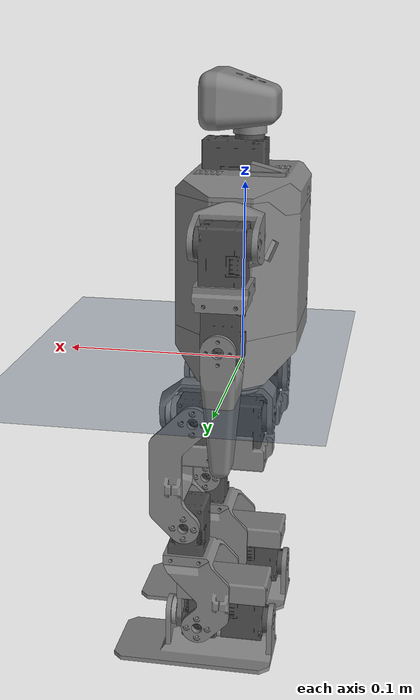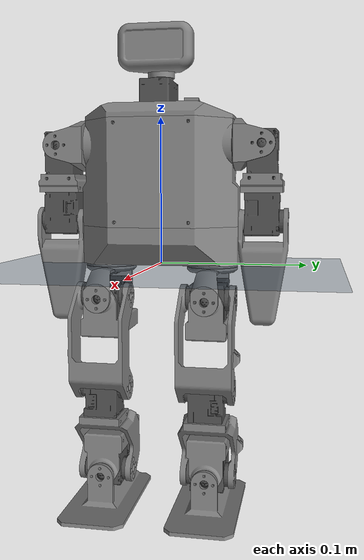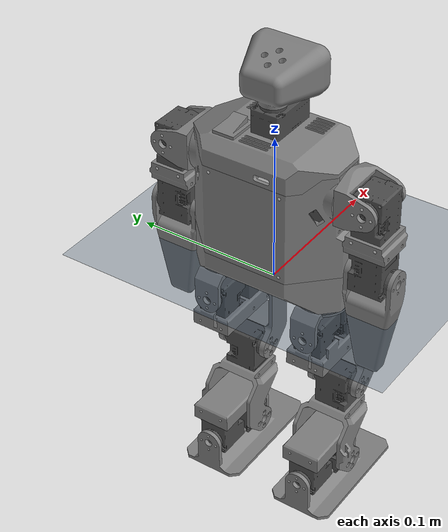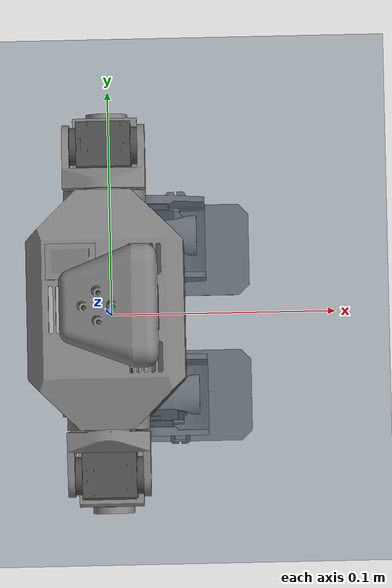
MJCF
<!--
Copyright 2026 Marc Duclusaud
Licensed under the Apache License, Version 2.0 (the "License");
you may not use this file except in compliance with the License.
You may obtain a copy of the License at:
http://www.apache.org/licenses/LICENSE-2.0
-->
<mujoco model="scene">
    <include file="robot.xml" />

    <visual>
        <headlight diffuse="0.6 0.6 0.6" ambient="0.3 0.3 0.3" specular="0 0 0" />
        <rgba haze="0.15 0.25 0.35 1" />
        <global azimuth="160" elevation="-20" />
    </visual>

    <asset>
        <texture type="skybox" builtin="gradient" rgb1="0.3 0.5 0.7" rgb2="0 0 0" width="512"
            height="3072" />
        <texture type="2d" name="groundplane" builtin="checker" mark="edge" rgb1="0.2 0.3 0.4"
            rgb2="0.1 0.2 0.3"
            markrgb="0.8 0.8 0.8" width="300" height="300" />
        <material name="groundplane" texture="groundplane" texuniform="true" texrepeat="5 5"
            reflectance="0.2" />
    </asset>

    <worldbody>
        <light pos="0 0 3.5" dir="0 0 -1" directional="true" />
        <geom name="floor" size="0 0 0.05" pos="0 0 0" type="plane" material="groundplane" />
    </worldbody>
</mujoco>

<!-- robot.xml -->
<!-- Generated using onshape-to-robot -->
<!-- Onshape https://cad.onshape.com/documents/d424992a192a8ce34ffce163/v/d1df625a85f2de984257464b/e/b34620a03cc3a684006c5867 -->
<mujoco model="microduck">
  <compiler angle="radian" meshdir="assets" autolimits="true"/>
  <default>
    <default class="microduck">
      <joint frictionloss="0.1" armature="0.005"/>
      <position kp="50" dampratio="1"/>
      <default class="visual">
        <geom type="mesh" contype="0" conaffinity="0" group="2"/>
      </default>
      <default class="collision">
        <geom group="3"/>
      </default>
    </default>
    <default class="xl330">
      <joint damping="0.041" frictionloss="0.013" armature="0.0018"/>
      <motor gear="1"/>
    </default>
  </default>
  <sensor>
    <framequat name="orientation" objtype="site" noise="0.001" objname="imu"/>
    <gyro name="angular-velocity" site="imu" noise="0.005"/>
    <gyro name="imu_ang_vel" site="imu"/>
    <velocimeter name="imu_lin_vel" site="imu"/>
    <accelerometer name="imu_accel" site="imu"/>
    <subtreeangmom name="root_angmom" body="trunk"/>
  </sensor>
  <worldbody>
    <!-- Link trunk -->
    <body name="trunk" pos="0 0 0" quat="1 0 0 0" childclass="microduck">
      <freejoint name="trunk_freejoint"/>
      <inertial pos="-0.00454781 -0.000104579 0.053896" mass="0.347283" fullinertia="0.000608722 0.000477224 0.000357224 -5.1387e-07 -1.16287e-05 1.9299e-06"/>
      <!-- Part stp39__configuration__2_2x8 -->
      <!-- Part stp39__configuration__2_2x8_2 -->
      <!-- Part arm_bearing_support__configuration_right -->
      <geom type="mesh" class="visual" pos="0.00575 -0.036 -0.0484" quat="0.707107 0 0 0.707107" mesh="arm_bearing_support__configuration_right" material="arm_bearing_support__configuration_right_material"/>
      <!-- Part xl330_without_horn -->
      <geom type="mesh" class="visual" pos="0 -0.044 0.081" quat="0.707107 0.707107 0 0" mesh="xl330_without_horn" material="xl330_without_horn_material"/>
      <!-- Part steel_shim -->
      <!-- Part pelvis__configuration_right -->
      <geom class="collision" pos="0 0 0.05375" quat="0.707107 0 0 0.707107" type="box" size="0.054 0.008 0.05375"/>
      <geom class="collision" pos="0 0 0.05775" quat="0.707107 0 0 0.707107" type="box" size="0.029 0.033 0.04275"/>
      <geom type="mesh" class="visual" pos="0.00575 -0.036 -0.0484" quat="0.707107 0 0 0.707107" mesh="pelvis__configuration_right" material="pelvis__configuration_right_material"/>
      <!-- Part stp39__configuration__2_2x8_3 -->
      <!-- Part arm_bearing_support__configuration_right_2 -->
      <geom type="mesh" class="visual" pos="-0.00575 0.036 -0.0484" quat="0.707107 -0 0 -0.707107" mesh="arm_bearing_support__configuration_right" material="arm_bearing_support__configuration_right_material"/>
      <!-- Part xl330_without_horn_2 -->
      <geom type="mesh" class="visual" pos="-0.00204165 -0 0.1195" quat="0.707107 0 0 0.707107" mesh="xl330_without_horn" material="xl330_without_horn_material"/>
      <!-- Part stp39__configuration__2_2x8_4 -->
      <!-- Part hat -->
      <!-- Part xl330_without_horn_3 -->
      <geom type="mesh" class="visual" pos="-0 0.036 0.0065" quat="0 0 -1 0" mesh="xl330_without_horn" material="xl330_without_horn_material"/>
      <!-- Part steel_shim_2 -->
      <!-- Part washer -->
      <!-- Part xl330_without_horn_4 -->
      <geom type="mesh" class="visual" pos="-0 0.044 0.081" quat="0 0 -0.707107 -0.707107" mesh="xl330_without_horn" material="xl330_without_horn_material"/>
      <!-- Part stp39__configuration__2_2x8_5 -->
      <!-- Part steel_shim_3 -->
      <!-- Part steel_shim_4 -->
      <!-- Part stp39__configuration__2_2x8_6 -->
      <!-- Part chest__configuration_right -->
      <geom type="mesh" class="visual" pos="0.00575 -0.036 -0.0484" quat="0.707107 0 0 0.707107" mesh="chest__configuration_right" material="chest__configuration_right_material"/>
      <!-- Part trunk_top__configuration_right -->
      <geom type="mesh" class="visual" pos="0.00575 -0.036 -0.0484" quat="0.707107 0 0 0.707107" mesh="trunk_top__configuration_right" material="trunk_top__configuration_right_material"/>
      <!-- Part stp39__configuration__2_2x8_7 -->
      <!-- Part washer_2 -->
      <!-- Part pom_shim -->
      <!-- Part pom_shim_2 -->
      <!-- Part stp39__configuration__2_2x8_8 -->
      <!-- Part stp39__configuration__2_2x8_9 -->
      <!-- Part stp39__configuration__2_2x8_10 -->
      <!-- Part stp39__configuration__2_2x8_11 -->
      <!-- Part steel_shim_5 -->
      <!-- Part steel_shim_6 -->
      <!-- Part battery -->
      <geom type="mesh" class="visual" pos="-0.01 -0 0.05115" quat="0.5 0.5 -0.5 -0.5" mesh="battery" material="battery_material"/>
      <!-- Part bms -->
      <!-- Part steel_shim_7 -->
      <!-- Part stp39__configuration__2_2x8_12 -->
      <!-- Part pom_shim_3 -->
      <!-- Part switch -->
      <geom type="mesh" class="visual" pos="-0.014 0.02 0.1075" quat="1 0 0 0" mesh="switch" material="switch_material"/>
      <!-- Part stp39__configuration__2_2x8_13 -->
      <!-- Part stp39__configuration__2_2x8_14 -->
      <!-- Part stp39__configuration__2_2x8_15 -->
      <!-- Part raspberry_pi_zero_2w -->
      <!-- Part washer_3 -->
      <!-- Part stp39__configuration__2_2x8_16 -->
      <!-- Part washer_4 -->
      <!-- Part steel_shim_8 -->
      <!-- Part stp39__configuration__2_2x8_17 -->
      <!-- Part xl330_without_horn_5 -->
      <geom type="mesh" class="visual" pos="0 -0.036 0.0065" quat="0 1 0 -0" mesh="xl330_without_horn" material="xl330_without_horn_material"/>
      <!-- Part pom_shim_4 -->
      <!-- Part stp39__configuration__2_2x8_18 -->
      <!-- Part charger -->
      <!-- Frame body -->
      <site group="3" name="body" pos="0 0 0" quat="1 -0 -0 -0"/>
      <!-- Frame imu -->
      <site group="3" name="imu" pos="0.01483 -0.002 0.0675" quat="0.5 -0.5 -0.5 0.5"/>
      <!-- Link head -->
      <body name="head" pos="-0.00204165 -0 0.126" quat="0.707107 0 0 0.707107">
        <!-- Joint from trunk to head -->
        <joint axis="0 0 1" name="head" type="hinge" range="-1.5707963267949783 1.5707963267948148" class="xl330"/>
        <inertial pos="5.1303e-08 -0.0074561 0.0161837" mass="0.0166215" fullinertia="2.92963e-06 3.58354e-06 4.24694e-06 -1.6e-11 4e-12 2.61187e-07"/>
        <!-- Part stp39__configuration__2x6 -->
        <!-- Part stp39__configuration__2x6_2 -->
        <!-- Part head__configuration_right -->
        <geom type="mesh" class="visual" pos="-0.036 -0.00779165 -0.1744" quat="1 -0 -0 0" mesh="head__configuration_right" material="head__configuration_right_material"/>
        <!-- Part stp39__configuration__2x6_3 -->
        <!-- Part stp39__configuration__2x6_4 -->
      </body>
      <!-- Link shoulder -->
      <body name="shoulder" pos="0 -0.0505 0.081" quat="0.707107 -0.707107 -0 0">
        <!-- Joint from trunk to shoulder -->
        <joint axis="0 0 1" name="right_shoulder_pitch" type="hinge" range="-3.141592653589793 3.141592653589793" class="xl330"/>
        <inertial pos="4.19e-10 2.814e-09 -0.00850029" mass="0.00898451" fullinertia="1.06003e-06 1.78233e-06 1.86739e-06 0 0 -0"/>
        <!-- Part stp39__configuration__2x6_5 -->
        <!-- Part stp39__configuration__2x6_6 -->
        <!-- Part stp39__configuration__2x6_7 -->
        <!-- Part stp39__configuration__2x6_8 -->
        <!-- Part stp39__configuration__2x6_9 -->
        <!-- Part stp39__configuration__2x6_10 -->
        <!-- Part stp39__configuration__2x6_11 -->
        <!-- Part stp39__configuration__2x6_12 -->
        <!-- Part stp39__configuration__2x6_13 -->
        <!-- Part shoulder -->
        <geom type="mesh" class="visual" pos="-0 -0.0245 0.0132" quat="0.5 -0.5 -0.5 -0.5" mesh="shoulder" material="shoulder_material"/>
        <!-- Part stp39__configuration__2x6_14 -->
        <!-- Part stp39__configuration__2x6_15 -->
        <!-- Part stp39__configuration__2x6_16 -->
        <!-- Link humerus__configuration_right -->
        <body name="humerus__configuration_right" pos="0.0145 0 -0.0195" quat="0 0.707107 0 0.707107">
          <!-- Joint from shoulder to humerus__configuration_right -->
          <joint axis="0 0 1" name="right_shoulder_roll" type="hinge" range="-3.1415926535897922 8.881784197001252e-16" class="xl330"/>
          <inertial pos="-0.000309872 -0.0252784 -0.0143918" mass="0.0416867" fullinertia="1.76899e-05 3.95132e-06 1.75854e-05 -3.03216e-07 -2.278e-09 -7.8184e-08"/>
          <!-- Part stp39__configuration__2_2x8_19 -->
          <!-- Part stp39__configuration__2_2x8_20 -->
          <!-- Part stp39__configuration__2_2x8_21 -->
          <!-- Part stp39__configuration__2_2x8_22 -->
          <!-- Part xl330 -->
          <geom type="mesh" class="visual" pos="0 0 -0.0065" quat="1 -0 -0 0" mesh="xl330" material="xl330_material"/>
          <!-- Part stp39__configuration__2_2x8_23 -->
          <!-- Part stp39__configuration__2_2x8_24 -->
          <!-- Part xl330_without_horn_6 -->
          <geom type="mesh" class="visual" pos="-0.008 -0.0515 -0.0145" quat="0 0.707107 0 -0.707107" mesh="xl330_without_horn" material="xl330_without_horn_material"/>
          <!-- Part stp39__configuration__2_2x8_25 -->
          <!-- Part stp39__configuration__2_2x8_26 -->
          <!-- Part humerus -->
          <geom type="mesh" class="visual" pos="-0.0327 -0.0245 -0.0145" quat="0 0 0.707107 0.707107" mesh="humerus" material="humerus_material"/>
          <!-- Link radius -->
          <body name="radius" pos="-0.0145 -0.0515 -0.0145" quat="0.707107 0 0.707107 -0">
            <!-- Joint from humerus__configuration_right to radius -->
            <joint axis="0 0 1" name="right_elbow" type="hinge" range="-2.181661564992912 2.181661564992912" class="xl330"/>
            <inertial pos="-4.0628e-08 -0.0310611 0.0130165" mass="0.0115415" fullinertia="5.26775e-06 1.21602e-06 4.45903e-06 -4e-12 -1.2e-11 1.7157e-07"/>
            <!-- Part stp39__configuration__2x6_17 -->
            <!-- Part stp39__configuration__2x6_18 -->
            <!-- Part radius -->
            <geom class="collision" pos="-0 0 0.0135" quat="0.707107 -0 -0 -0.707107" type="cylinder" size="0.009 0.01675"/>
            <geom class="collision" pos="-0 -0.067014 0.0135" quat="0.707107 -0 -0 -0.707107" type="cylinder" size="0.00525 0.008"/>
            <geom type="mesh" class="visual" pos="0 0.027 0.0472" quat="0.5 -0.5 -0.5 -0.5" mesh="radius" material="radius_material"/>
            <!-- Part stp39__configuration__2x6_19 -->
            <!-- Part dc15_a01_idle_cap_dummy -->
            <geom type="mesh" class="visual" pos="0 0 0.0065" quat="0 0.707107 0.707107 -0" mesh="dc15_a01_idle_cap_dummy" material="dc15_a01_idle_cap_dummy_material"/>
            <!-- Part bts2_m2_6x8 -->
            <geom type="mesh" class="visual" pos="0 0 0.0065" quat="0 0.707107 0.707107 -0" mesh="bts2_m2_6x8" material="bts2_m2_6x8_material"/>
            <!-- Part stp39__configuration__2x6_20 -->
          </body>
        </body>
      </body>
      <!-- Link hip -->
      <body name="hip" pos="0 -0.036 0" quat="1 -0 -0 0">
        <!-- Joint from trunk to hip -->
        <joint axis="0 0 1" name="right_hip_yaw" type="hinge" range="-4.188790204786353 1.047197551196635" class="xl330"/>
        <inertial pos="0.00421822 1.46909e-07 -0.00948697" mass="0.00884451" fullinertia="9.36719e-07 4.32505e-06 4.03697e-06 -3.3e-11 1.95496e-07 0"/>
        <!-- Part hip__configuration_right -->
        <geom type="mesh" class="visual" pos="0.00575 -0 -0.0484" quat="0.707107 0 0 0.707107" mesh="hip__configuration_right" material="hip__configuration_right_material"/>
        <!-- Part stp39__configuration__2x6_21 -->
        <!-- Part stp39__configuration__2x6_22 -->
        <!-- Part stp39__configuration__2x6_23 -->
        <!-- Part stp39__configuration__2x6_24 -->
        <!-- Part stp39__configuration__2x6_25 -->
        <!-- Part stp39__configuration__2x6_26 -->
        <!-- Part stp39__configuration__2x6_27 -->
        <!-- Part stp39__configuration__2x6_28 -->
        <!-- Part stp39__configuration__2x6_29 -->
        <!-- Part stp39__configuration__2x6_30 -->
        <!-- Part stp39__configuration__2x6_31 -->
        <!-- Part stp39__configuration__2x6_32 -->
        <!-- Link hip_block__configuration_right -->
        <body name="hip_block__configuration_right" pos="-0.02 0 -0.0214" quat="0.5 -0.5 0.5 -0.5">
          <!-- Joint from hip to hip_block__configuration_right -->
          <joint axis="0 0 1" name="right_hip_roll" type="hinge" range="-0.610865238197994 0.6108652381980366" class="xl330"/>
          <inertial pos="-5.75932e-05 0.00982795 0.0271518" mass="0.04763" fullinertia="1.64064e-05 1.33088e-05 7.85889e-06 -9.153e-09 7.8745e-08 6.63067e-07"/>
          <!-- Part stp39__configuration__2_2x8_27 -->
          <!-- Part xl330_2 -->
          <geom type="mesh" class="visual" pos="-0.008 -0 0.0385" quat="0 0.707107 0 -0.707107" mesh="xl330" material="xl330_material"/>
          <!-- Part dc15_a01_horn_idle2_dummy -->
          <geom type="mesh" class="visual" pos="0 -0 0.033" quat="0 -0 1 0" mesh="dc15_a01_horn_idle2_dummy" material="dc15_a01_horn_idle2_dummy_material"/>
          <!-- Part stp39__configuration__2_2x8_28 -->
          <!-- Part stp39__configuration__2_2x8_29 -->
          <!-- Part stp39__configuration__2_2x8_30 -->
          <!-- Part hip_dbl_block__configuration_right -->
          <geom class="collision" pos="-0 0.02075 0.02575" quat="0 -0 0.707107 -0.707107" type="box" size="0.0135 0.02525 0.00625"/>
          <geom type="mesh" class="visual" pos="0 0.027 0.02575" quat="0 -0 0.707107 -0.707107" mesh="hip_dbl_block__configuration_right" material="hip_dbl_block__configuration_right_material"/>
          <!-- Part stp39__configuration__2_2x8_31 -->
          <!-- Part xl330_without_horn_7 -->
          <geom type="mesh" class="visual" pos="-0 0 0.0065" quat="0 1 0 0" mesh="xl330_without_horn" material="xl330_without_horn_material"/>
          <!-- Part bts2_m2_6x8_2 -->
          <geom type="mesh" class="visual" pos="0 -0 0.033" quat="0 -0 1 0" mesh="bts2_m2_6x8" material="bts2_m2_6x8_material"/>
          <!-- Part dc15_a01_idle_cap_dummy_2 -->
          <geom type="mesh" class="visual" pos="0 -0 0.033" quat="0 -0 1 0" mesh="dc15_a01_idle_cap_dummy" material="dc15_a01_idle_cap_dummy_material"/>
          <!-- Part stp39__configuration__2_2x8_32 -->
          <!-- Part spacer__configuration_right -->
          <geom type="mesh" class="visual" pos="-0 -0.0095 0.0385" quat="0 0 -0.707107 -0.707107" mesh="spacer__configuration_right" material="spacer__configuration_right_material"/>
          <!-- Link femur__configuration_right -->
          <body name="femur__configuration_right" pos="-0.0145 -0 0.0385" quat="0 0.707107 0 -0.707107">
            <!-- Joint from hip_block__configuration_right to femur__configuration_right -->
            <joint axis="0 0 1" name="right_hip_pitch" type="hinge" range="-1.5707963267948974 1.5707963267948957" class="xl330"/>
            <inertial pos="-0.0109472 -0.0366847 -0.0147025" mass="0.014726" fullinertia="1.12665e-05 4.38335e-06 8.95932e-06 -1.12592e-06 1.333e-09 -4.521e-09"/>
            <!-- Part stp39__configuration__2x6_33 -->
            <!-- Part femur__configuration_right -->
            <geom class="collision" pos="-0.015 -0.0335001 0.00275" quat="0.5 -0.5 0.5 0.5" type="box" size="0.00125 0.009 0.022228"/>
            <geom class="collision" pos="-0.008818 -0.00881806 0.00275" quat="0.653281 -0.270598 0.653281 0.270598" type="box" size="0.00125 0.009 0.0124705"/>
            <geom class="collision" pos="-0.011318 -0.0556821 0.00275" quat="0.270598 -0.653281 0.270598 0.653281" type="box" size="0.00125 0.009 0.008935"/>
            <geom type="mesh" class="visual" pos="0.003 -0.132713 -0.0145" quat="0.5 -0.5 0.5 0.5" mesh="femur__configuration_right" material="femur__configuration_right_material"/>
            <!-- Part stp39__configuration__2x6_34 -->
            <!-- Part stp39__configuration__2x6_35 -->
            <!-- Part stp39__configuration__2x6_36 -->
            <!-- Part stp39__configuration__2x6_37 -->
            <!-- Part stp39__configuration__2x6_38 -->
            <!-- Part stp39__configuration__2x6_39 -->
            <!-- Part stp39__configuration__2x6_40 -->
            <!-- Part stp39__configuration__2x6_41 -->
            <!-- Part stp39__configuration__2x6_42 -->
            <!-- Part stp39__configuration__2x6_43 -->
            <!-- Part stp39__configuration__2x6_44 -->
            <!-- Part stp39__configuration__2x6_45 -->
            <!-- Part stp39__configuration__2x6_46 -->
            <!-- Part stp39__configuration__2x6_47 -->
            <!-- Part stp39__configuration__2x6_48 -->
            <!-- Link tibia__configuration_right -->
            <body name="tibia__configuration_right" pos="-0.005 -0.062 -0" quat="1 -0 0 -0">
              <!-- Joint from femur__configuration_right to tibia__configuration_right -->
              <joint axis="0 0 1" name="right_knee" type="hinge" range="-0.7853981633977201 2.356194490192073" class="xl330"/>
              <inertial pos="0.00276278 -0.0196679 -0.0144621" mass="0.0300463" fullinertia="1.53882e-05 5.3311e-06 1.38581e-05 2.25674e-06 7.6682e-08 -1.37001e-07"/>
              <!-- Part stp39__configuration__2x6_49 -->
              <!-- Part stp39__configuration__2x6_50 -->
              <!-- Part stp39__configuration__2x6_51 -->
              <!-- Part stp39__configuration__2x6_52 -->
              <!-- Part stp39__configuration__2_2x8_33 -->
              <!-- Part xl330_3 -->
              <geom type="mesh" class="visual" pos="0 -0 -0.0065" quat="1 -0 -0 0" mesh="xl330" material="xl330_material"/>
              <!-- Part tibia__configuration_right -->
              <geom class="collision" pos="0.017 -0.0444631 0.00275" quat="0.5 -0.5 0.5 0.5" type="box" size="0.00125 0.009 0.0115"/>
              <geom class="collision" pos="0.0138 -0.0554431 0.00275" quat="0.653281 -0.270598 0.653281 0.270598" type="box" size="0.00125 0.009 0.00825"/>
              <geom class="collision" pos="0.00675 -0.0287131 0.00275" quat="0.270598 -0.653281 0.270598 0.653281" type="box" size="0.00125 0.0106065 0.016617"/>
              <geom class="collision" pos="0.0117 -0.0236231 -0.0145" quat="0.270598 -0.653281 0.270598 0.653281" type="box" size="0.0185 0.0035 0.0023295"/>
              <geom type="mesh" class="visual" pos="0.008 -0.0707131 -0.0145" quat="0.5 -0.5 0.5 0.5" mesh="tibia__configuration_right" material="tibia__configuration_right_material"/>
              <!-- Part stp39__configuration__2x6_53 -->
              <!-- Part stp39__configuration__2_2x8_34 -->
              <!-- Part stp39__configuration__2x6_54 -->
              <!-- Part stp39__configuration__2_2x8_35 -->
              <!-- Part stp39__configuration__2_2x8_36 -->
              <!-- Part stp39__configuration__2x6_55 -->
              <!-- Part stp39__configuration__2x6_56 -->
              <!-- Link ankle_block__configuration_left -->
              <body name="ankle_block__configuration_left" pos="0.008 -0.0612131 -0" quat="0 -0 -0 1">
                <!-- Joint from tibia__configuration_right to ankle_block__configuration_left -->
                <joint axis="0 0 1" name="right_ankle_pitch" type="hinge" range="-1.5707963267948077 0.6108652381981041" class="xl330"/>
                <inertial pos="-0.0110676 -0.00979852 -0.0144015" mass="0.04722" fullinertia="7.83993e-06 1.29837e-05 1.60971e-05 -6.00742e-07 -4.9782e-08 -6.127e-09"/>
                <!-- Part stp39__configuration__2_2x8_37 -->
                <!-- Part xl330_4 -->
                <geom type="mesh" class="visual" pos="0 0 -0.0065" quat="1 0 -0 0" mesh="xl330" material="xl330_material"/>
                <!-- Part dc15_a01_horn_idle2_dummy_2 -->
                <geom type="mesh" class="visual" pos="-0.0055 0 -0.0145" quat="0 -0.707107 -0 0.707107" mesh="dc15_a01_horn_idle2_dummy" material="dc15_a01_horn_idle2_dummy_material"/>
                <!-- Part stp39__configuration__2_2x8_38 -->
                <!-- Part stp39__configuration__2_2x8_39 -->
                <!-- Part stp39__configuration__2_2x8_40 -->
                <!-- Part ankle_dbl_block__configuration_right -->
                <geom class="collision" pos="-0.01275 -0.02075 -0.0145" quat="0.5 0.5 0.5 -0.5" type="box" size="0.0135 0.02525 0.00625"/>
                <geom type="mesh" class="visual" pos="0 0.0095 -0.0145" quat="0.5 0.5 0.5 -0.5" mesh="ankle_dbl_block__configuration_right" material="ankle_dbl_block__configuration_right_material"/>
                <!-- Part stp39__configuration__2_2x8_41 -->
                <!-- Part xl330_without_horn_8 -->
                <geom type="mesh" class="visual" pos="-0.032 0 -0.0145" quat="0.707107 0 -0.707107 -0" mesh="xl330_without_horn" material="xl330_without_horn_material"/>
                <!-- Part bts2_m2_6x8_3 -->
                <geom type="mesh" class="visual" pos="-0.0055 0 -0.0145" quat="0 -0.707107 -0 0.707107" mesh="bts2_m2_6x8" material="bts2_m2_6x8_material"/>
                <!-- Part dc15_a01_idle_cap_dummy_3 -->
                <geom type="mesh" class="visual" pos="-0.0055 0 -0.0145" quat="0 -0.707107 -0 0.707107" mesh="dc15_a01_idle_cap_dummy" material="dc15_a01_idle_cap_dummy_material"/>
                <!-- Part stp39__configuration__2_2x8_42 -->
                <!-- Part spacer__configuration_right_2 -->
                <geom type="mesh" class="visual" pos="0 0.0095 -0.0145" quat="0.5 0.5 0.5 -0.5" mesh="spacer__configuration_right" material="spacer__configuration_right_material"/>
                <!-- Link foot -->
                <body name="foot" pos="-0.0385 0 -0.0145" quat="0 -0.707107 0 -0.707107">
                  <!-- Joint from ankle_block__configuration_left to foot -->
                  <joint axis="0 0 1" name="right_ankle_roll" type="hinge" range="-0.610865238197748 0.6108652381982826" class="xl330"/>
                  <inertial pos="-0 -0.0168869 0.0347422" mass="0.016823" fullinertia="1.15605e-05 1.2167e-05 2.53496e-06 0 -0 5.67932e-07"/>
                  <!-- Part stp39__configuration__2x6_57 -->
                  <!-- Part stp39__configuration__2x6_58 -->
                  <!-- Part stp39__configuration__2x6_59 -->
                  <!-- Part stp39__configuration__2x6_60 -->
                  <!-- Part stp39__configuration__2x6_61 -->
                  <!-- Part foot__configuration_right -->
                  <geom name="right_foot_collision_1" class="collision" pos="-0 -0.02175 0.042" quat="0 0 0.707107 0.707107" type="box" size="0.0225 0.04 0.00125"/>
                  <geom name="right_foot_collision_2" class="collision" pos="-0 -0.02175 0.042" quat="0 0 0.707107 0.707107" type="box" size="0.0175 0.045 0.00125"/>
                  <geom name="right_foot_collision_3" class="collision" pos="-0.0175 -0.02175 0.002" quat="0.270598 -0.270598 -0.653281 -0.653281" type="box" size="0.00353553 0.00353553 0.00125"/>
                  <geom name="right_foot_collision_4" class="collision" pos="0.0175 -0.02175 0.002" quat="0.270598 -0.270598 -0.653281 -0.653281" type="box" size="0.00353553 0.00353553 0.00125"/>
                  <geom name="right_foot_collision_5" class="collision" pos="-0.0175 -0.02175 0.082" quat="0.270598 -0.270598 -0.653281 -0.653281" type="box" size="0.00353553 0.00353553 0.00125"/>
                  <geom name="right_foot_collision_6" class="collision" pos="0.0175 -0.02175 0.082" quat="0.270598 -0.270598 -0.653281 -0.653281" type="box" size="0.00353553 0.00353553 0.00125"/>
                  <geom type="mesh" class="visual" pos="-0 -0.0095 0.0385" quat="0 0 0.707107 0.707107" mesh="foot__configuration_right" material="foot__configuration_right_material"/>
                  <!-- Part stp39__configuration__2x6_62 -->
                  <!-- Part stp39__configuration__2x6_63 -->
                  <!-- Part stp39__configuration__2x6_64 -->
                  <!-- Frame right_foot -->
                  <site group="3" name="right_foot" pos="-0 -0.023 0.042" quat="0.5 -0.5 -0.5 -0.5"/>
                </body>
              </body>
            </body>
          </body>
        </body>
      </body>
      <!-- Link shoulder_2 -->
      <body name="shoulder_2" pos="-0 0.0505 0.081" quat="0 0 -0.707107 -0.707107">
        <!-- Joint from trunk to shoulder_2 -->
        <joint axis="0 0 1" name="left_shoulder_pitch" type="hinge" range="-3.141592653589793 3.141592653589793" class="xl330"/>
        <inertial pos="-4.19e-10 2.814e-09 0.00850029" mass="0.00898451" fullinertia="1.06003e-06 1.78233e-06 1.86739e-06 -0 0 0"/>
        <!-- Part stp39__configuration__2x6_65 -->
        <!-- Part stp39__configuration__2x6_66 -->
        <!-- Part stp39__configuration__2x6_67 -->
        <!-- Part stp39__configuration__2x6_68 -->
        <!-- Part stp39__configuration__2x6_69 -->
        <!-- Part stp39__configuration__2x6_70 -->
        <!-- Part stp39__configuration__2x6_71 -->
        <!-- Part stp39__configuration__2x6_72 -->
        <!-- Part stp39__configuration__2x6_73 -->
        <!-- Part shoulder_2 -->
        <geom type="mesh" class="visual" pos="0 -0.0245 -0.0132" quat="0.5 -0.5 0.5 0.5" mesh="shoulder" material="shoulder_material"/>
        <!-- Part stp39__configuration__2x6_74 -->
        <!-- Part stp39__configuration__2x6_75 -->
        <!-- Part stp39__configuration__2x6_76 -->
        <!-- Link humerus__configuration_left -->
        <body name="humerus__configuration_left" pos="-0.0145 0 0.0195" quat="0 -0.707107 -0 0.707107">
          <!-- Joint from shoulder_2 to humerus__configuration_left -->
          <joint axis="0 0 1" name="left_shoulder_roll" type="hinge" range="0.0 3.141592653589793" class="xl330"/>
          <inertial pos="-0.000313281 0.0252784 -0.0143884" mass="0.0416867" fullinertia="1.76899e-05 3.9512e-06 1.75853e-05 3.01684e-07 -5.77e-10 7.6531e-08"/>
          <!-- Part stp39__configuration__2_2x8_43 -->
          <!-- Part stp39__configuration__2_2x8_44 -->
          <!-- Part stp39__configuration__2_2x8_45 -->
          <!-- Part stp39__configuration__2_2x8_46 -->
          <!-- Part xl330_5 -->
          <geom type="mesh" class="visual" pos="0 0 -0.0065" quat="0 -0 -0 -1" mesh="xl330" material="xl330_material"/>
          <!-- Part stp39__configuration__2_2x8_47 -->
          <!-- Part stp39__configuration__2_2x8_48 -->
          <!-- Part xl330_without_horn_9 -->
          <geom type="mesh" class="visual" pos="-0.008 0.0515 -0.0145" quat="0.707107 0 -0.707107 -0" mesh="xl330_without_horn" material="xl330_without_horn_material"/>
          <!-- Part stp39__configuration__2_2x8_49 -->
          <!-- Part stp39__configuration__2_2x8_50 -->
          <!-- Part humerus_2 -->
          <geom type="mesh" class="visual" pos="0.0327 0.0245 -0.0145" quat="0.707107 0.707107 0 0" mesh="humerus" material="humerus_material"/>
          <!-- Link radius_2 -->
          <body name="radius_2" pos="-0.0145 0.0515 -0.0145" quat="0.707107 0 -0.707107 0">
            <!-- Joint from humerus__configuration_left to radius_2 -->
            <joint axis="0 0 1" name="left_elbow" type="hinge" range="-2.1816615649929156 2.1816615649929085" class="xl330"/>
            <inertial pos="-4.0628e-08 0.0310611 -0.0130165" mass="0.0115415" fullinertia="5.26775e-06 1.21602e-06 4.45903e-06 4e-12 1.2e-11 1.7157e-07"/>
            <!-- Part stp39__configuration__2x6_77 -->
            <!-- Part stp39__configuration__2x6_78 -->
            <!-- Part radius_2 -->
            <geom class="collision" pos="-0 -0 -0.0135" quat="0 0.707107 0.707107 -0" type="cylinder" size="0.009 0.01675"/>
            <geom class="collision" pos="-0 0.067014 -0.0135" quat="0 0.707107 0.707107 -0" type="cylinder" size="0.00525 0.008"/>
            <geom type="mesh" class="visual" pos="-0 -0.027 -0.0472" quat="0.5 0.5 0.5 -0.5" mesh="radius" material="radius_material"/>
            <!-- Part stp39__configuration__2x6_79 -->
            <!-- Part dc15_a01_idle_cap_dummy_4 -->
            <geom type="mesh" class="visual" pos="-0 0 -0.0065" quat="0.707107 -0 -0 -0.707107" mesh="dc15_a01_idle_cap_dummy" material="dc15_a01_idle_cap_dummy_material"/>
            <!-- Part bts2_m2_6x8_4 -->
            <geom type="mesh" class="visual" pos="-0 0 -0.0065" quat="0.707107 -0 -0 -0.707107" mesh="bts2_m2_6x8" material="bts2_m2_6x8_material"/>
            <!-- Part stp39__configuration__2x6_80 -->
          </body>
        </body>
      </body>
      <!-- Link hip_2 -->
      <body name="hip_2" pos="-0 0.036 0" quat="0 -0 0 -1">
        <!-- Joint from trunk to hip_2 -->
        <joint axis="0 0 1" name="left_hip_yaw" type="hinge" range="-1.0471975511965976 4.1887902047863905" class="xl330"/>
        <inertial pos="-0.00421822 -1.46909e-07 -0.00948697" mass="0.00884451" fullinertia="9.36719e-07 4.32505e-06 4.03697e-06 -3.3e-11 -1.95496e-07 -0"/>
        <!-- Part hip__configuration_right_2 -->
        <geom type="mesh" class="visual" pos="-0.00575 -0 -0.0484" quat="0.707107 -0 -0 -0.707107" mesh="hip__configuration_right" material="hip__configuration_right_material"/>
        <!-- Part stp39__configuration__2x6_81 -->
        <!-- Part stp39__configuration__2x6_82 -->
        <!-- Part stp39__configuration__2x6_83 -->
        <!-- Part stp39__configuration__2x6_84 -->
        <!-- Part stp39__configuration__2x6_85 -->
        <!-- Part stp39__configuration__2x6_86 -->
        <!-- Part stp39__configuration__2x6_87 -->
        <!-- Part stp39__configuration__2x6_88 -->
        <!-- Part stp39__configuration__2x6_89 -->
        <!-- Part stp39__configuration__2x6_90 -->
        <!-- Part stp39__configuration__2x6_91 -->
        <!-- Part stp39__configuration__2x6_92 -->
        <!-- Link hip_block__configuration_left -->
        <body name="hip_block__configuration_left" pos="0.02 0 -0.0214" quat="0.5 -0.5 -0.5 0.5">
          <!-- Joint from hip_2 to hip_block__configuration_left -->
          <joint axis="0 0 1" name="left_hip_roll" type="hinge" range="-0.6108652381980162 0.6108652381980144" class="xl330"/>
          <inertial pos="6.0554e-05 0.00982795 0.0271548" mass="0.04763" fullinertia="1.64096e-05 1.3312e-05 7.85888e-06 8.495e-09 -7.6959e-08 6.62404e-07"/>
          <!-- Part stp39__configuration__2_2x8_51 -->
          <!-- Part xl330_6 -->
          <geom type="mesh" class="visual" pos="0.008 -0 0.0385" quat="0 0.707107 0 0.707107" mesh="xl330" material="xl330_material"/>
          <!-- Part dc15_a01_horn_idle2_dummy_3 -->
          <geom type="mesh" class="visual" pos="-0 0 0.033" quat="0 -0 -1 -0" mesh="dc15_a01_horn_idle2_dummy" material="dc15_a01_horn_idle2_dummy_material"/>
          <!-- Part stp39__configuration__2_2x8_52 -->
          <!-- Part stp39__configuration__2_2x8_53 -->
          <!-- Part stp39__configuration__2_2x8_54 -->
          <!-- Part hip_dbl_block__configuration_left -->
          <geom class="collision" pos="-0 0.02075 0.02575" quat="0 -0 0.707107 -0.707107" type="box" size="0.0135 0.02525 0.00625"/>
          <geom type="mesh" class="visual" pos="0.027 0.027 0.02575" quat="0 -0 0.707107 -0.707107" mesh="hip_dbl_block__configuration_left" material="hip_dbl_block__configuration_left_material"/>
          <!-- Part stp39__configuration__2_2x8_55 -->
          <!-- Part xl330_without_horn_10 -->
          <geom type="mesh" class="visual" pos="0 0 0.0065" quat="0 1 0 0" mesh="xl330_without_horn" material="xl330_without_horn_material"/>
          <!-- Part bts2_m2_6x8_5 -->
          <geom type="mesh" class="visual" pos="-0 0 0.033" quat="0 -0 -1 -0" mesh="bts2_m2_6x8" material="bts2_m2_6x8_material"/>
          <!-- Part dc15_a01_idle_cap_dummy_5 -->
          <geom type="mesh" class="visual" pos="-0 0 0.033" quat="0 -0 -1 -0" mesh="dc15_a01_idle_cap_dummy" material="dc15_a01_idle_cap_dummy_material"/>
          <!-- Part stp39__configuration__2_2x8_56 -->
          <!-- Part spacer__configuration_right_3 -->
          <geom type="mesh" class="visual" pos="-0 -0.0095 0.0385" quat="0 0 -0.707107 -0.707107" mesh="spacer__configuration_right" material="spacer__configuration_right_material"/>
          <!-- Link femur__configuration_left -->
          <body name="femur__configuration_left" pos="-0.0145 -0 0.0385" quat="0.707107 -0 -0.707107 0">
            <!-- Joint from hip_block__configuration_left to femur__configuration_left -->
            <joint axis="0 0 1" name="left_hip_pitch" type="hinge" range="-1.5707963267948974 1.5707963267948957" class="xl330"/>
            <inertial pos="0.0109472 0.0366847 -0.0142975" mass="0.014726" fullinertia="1.12665e-05 4.38335e-06 8.95932e-06 -1.12592e-06 1.333e-09 -4.521e-09"/>
            <!-- Part stp39__configuration__2x6_93 -->
            <!-- Part femur__configuration_left -->
            <geom class="collision" pos="0.015 0.0335001 -0.03175" quat="0.5 0.5 0.5 -0.5" type="box" size="0.00125 0.009 0.022228"/>
            <geom class="collision" pos="0.008818 0.00881806 -0.03175" quat="0.270598 0.653281 0.270598 -0.653281" type="box" size="0.00125 0.009 0.0124705"/>
            <geom class="collision" pos="0.011318 0.0556821 -0.03175" quat="0.653281 0.270598 0.653281 -0.270598" type="box" size="0.00125 0.009 0.008935"/>
            <geom type="mesh" class="visual" pos="-0.003 0.132713 -0.0515" quat="0.5 0.5 0.5 -0.5" mesh="femur__configuration_left" material="femur__configuration_left_material"/>
            <!-- Part stp39__configuration__2x6_94 -->
            <!-- Part stp39__configuration__2x6_95 -->
            <!-- Part stp39__configuration__2x6_96 -->
            <!-- Part stp39__configuration__2x6_97 -->
            <!-- Part stp39__configuration__2x6_98 -->
            <!-- Part stp39__configuration__2x6_99 -->
            <!-- Part stp39__configuration__2x6_100 -->
            <!-- Part stp39__configuration__2x6_101 -->
            <!-- Part stp39__configuration__2x6_102 -->
            <!-- Part stp39__configuration__2x6_103 -->
            <!-- Part stp39__configuration__2x6_104 -->
            <!-- Part stp39__configuration__2x6_105 -->
            <!-- Part stp39__configuration__2x6_106 -->
            <!-- Part stp39__configuration__2x6_107 -->
            <!-- Part stp39__configuration__2x6_108 -->
            <!-- Link tibia__configuration_left -->
            <body name="tibia__configuration_left" pos="0.005 0.062 0" quat="1 -0 -0 -0">
              <!-- Joint from femur__configuration_left to tibia__configuration_left -->
              <joint axis="0 0 1" name="left_knee" type="hinge" range="-0.7853981633974314 2.3561944901923617" class="xl330"/>
              <inertial pos="-0.00275805 0.0196679 -0.0145379" mass="0.0300463" fullinertia="1.53882e-05 5.33188e-06 1.38589e-05 2.25747e-06 7.7561e-08 -1.37001e-07"/>
              <!-- Part stp39__configuration__2x6_109 -->
              <!-- Part stp39__configuration__2x6_110 -->
              <!-- Part stp39__configuration__2x6_111 -->
              <!-- Part stp39__configuration__2x6_112 -->
              <!-- Part stp39__configuration__2_2x8_57 -->
              <!-- Part xl330_7 -->
              <geom type="mesh" class="visual" pos="-0 0 -0.0225" quat="0 1 0 0" mesh="xl330" material="xl330_material"/>
              <!-- Part tibia__configuration_left -->
              <geom class="collision" pos="-0.017 0.0444631 -0.0317" quat="0.5 0.5 0.5 -0.5" type="box" size="0.00125 0.009 0.0115"/>
              <geom class="collision" pos="-0.0138 0.0554431 -0.03175" quat="0.270598 0.653281 0.270598 -0.653281" type="box" size="0.00125 0.009 0.00825"/>
              <geom class="collision" pos="-0.00675 0.0287131 -0.03175" quat="0.653281 0.270598 0.653281 -0.270598" type="box" size="0.00125 0.0106065 0.016617"/>
              <geom class="collision" pos="-0.0117 0.0236231 -0.0145" quat="0.653281 0.270598 0.653281 -0.270598" type="box" size="0.0185 0.0035 0.0023295"/>
              <geom type="mesh" class="visual" pos="-0.008 0.0707131 -0.0515" quat="0.5 0.5 0.5 -0.5" mesh="tibia__configuration_left" material="tibia__configuration_left_material"/>
              <!-- Part stp39__configuration__2x6_113 -->
              <!-- Part stp39__configuration__2_2x8_58 -->
              <!-- Part stp39__configuration__2x6_114 -->
              <!-- Part stp39__configuration__2_2x8_59 -->
              <!-- Part stp39__configuration__2_2x8_60 -->
              <!-- Part stp39__configuration__2x6_115 -->
              <!-- Part stp39__configuration__2x6_116 -->
              <!-- Link ankle_block__configuration_right -->
              <body name="ankle_block__configuration_right" pos="-0.008 0.0612131 -0" quat="0 0 -0 1">
                <!-- Joint from tibia__configuration_left to ankle_block__configuration_right -->
                <joint axis="0 0 1" name="left_ankle_pitch" type="hinge" range="-1.5707963267948744 0.6108652381980375" class="xl330"/>
                <inertial pos="0.0110706 0.00979852 -0.0145955" mass="0.04722" fullinertia="7.83996e-06 1.29805e-05 1.6094e-05 -6.01409e-07 -5.1613e-08 -6.789e-09"/>
                <!-- Part stp39__configuration__2_2x8_61 -->
                <!-- Part xl330_8 -->
                <geom type="mesh" class="visual" pos="0 0 -0.0225" quat="0 1 0 0" mesh="xl330" material="xl330_material"/>
                <!-- Part dc15_a01_horn_idle2_dummy_4 -->
                <geom type="mesh" class="visual" pos="0.0055 0 -0.0145" quat="0.707107 -0 0.707107 0" mesh="dc15_a01_horn_idle2_dummy" material="dc15_a01_horn_idle2_dummy_material"/>
                <!-- Part stp39__configuration__2_2x8_62 -->
                <!-- Part stp39__configuration__2_2x8_63 -->
                <!-- Part stp39__configuration__2_2x8_64 -->
                <!-- Part ankle_dbl_block__configuration_right_2 -->
                <geom class="collision" pos="0.01275 0.02075 -0.0145" quat="0.5 -0.5 0.5 0.5" type="box" size="0.0135 0.02525 0.00625"/>
                <geom type="mesh" class="visual" pos="-0 -0.0095 -0.0145" quat="0.5 -0.5 0.5 0.5" mesh="ankle_dbl_block__configuration_right" material="ankle_dbl_block__configuration_right_material"/>
                <!-- Part stp39__configuration__2_2x8_65 -->
                <!-- Part xl330_without_horn_11 -->
                <geom type="mesh" class="visual" pos="0.032 0 -0.0145" quat="0 0.707107 0 0.707107" mesh="xl330_without_horn" material="xl330_without_horn_material"/>
                <!-- Part bts2_m2_6x8_6 -->
                <geom type="mesh" class="visual" pos="0.0055 0 -0.0145" quat="0.707107 -0 0.707107 0" mesh="bts2_m2_6x8" material="bts2_m2_6x8_material"/>
                <!-- Part dc15_a01_idle_cap_dummy_6 -->
                <geom type="mesh" class="visual" pos="0.0055 0 -0.0145" quat="0.707107 -0 0.707107 0" mesh="dc15_a01_idle_cap_dummy" material="dc15_a01_idle_cap_dummy_material"/>
                <!-- Part stp39__configuration__2_2x8_66 -->
                <!-- Part spacer__configuration_right_4 -->
                <geom type="mesh" class="visual" pos="-0 -0.0095 -0.0145" quat="0.5 -0.5 0.5 0.5" mesh="spacer__configuration_right" material="spacer__configuration_right_material"/>
                <!-- Link foot_2 -->
                <body name="foot_2" pos="0.0385 0 -0.0145" quat="0.707107 -0 -0.707107 0">
                  <!-- Joint from ankle_block__configuration_right to foot_2 -->
                  <joint axis="0 0 1" name="left_ankle_roll" type="hinge" range="-0.6108652381980109 0.6108652381980197" class="xl330"/>
                  <inertial pos="-0 -0.0168869 0.0347422" mass="0.016823" fullinertia="1.15605e-05 1.2167e-05 2.53496e-06 0 -0 5.67932e-07"/>
                  <!-- Part stp39__configuration__2x6_117 -->
                  <!-- Part stp39__configuration__2x6_118 -->
                  <!-- Part stp39__configuration__2x6_119 -->
                  <!-- Part stp39__configuration__2x6_120 -->
                  <!-- Part stp39__configuration__2x6_121 -->
                  <!-- Part foot__configuration_right_2 -->
                  <geom name="left_foot_collision_1" class="collision" pos="-0 -0.02175 0.042" quat="0 0 0.707107 0.707107" type="box" size="0.0225 0.04 0.00125"/>
                  <geom name="left_foot_collision_2" class="collision" pos="-0 -0.02175 0.042" quat="0 0 0.707107 0.707107" type="box" size="0.0175 0.045 0.00125"/>
                  <geom name="left_foot_collision_3" class="collision" pos="-0.0175 -0.02175 0.002" quat="0.270598 -0.270598 -0.653281 -0.653281" type="box" size="0.00353553 0.00353553 0.00125"/>
                  <geom name="left_foot_collision_4" class="collision" pos="0.0175 -0.02175 0.002" quat="0.270598 -0.270598 -0.653281 -0.653281" type="box" size="0.00353553 0.00353553 0.00125"/>
                  <geom name="left_foot_collision_5" class="collision" pos="-0.0175 -0.02175 0.082" quat="0.270598 -0.270598 -0.653281 -0.653281" type="box" size="0.00353553 0.00353553 0.00125"/>
                  <geom name="left_foot_collision_6" class="collision" pos="0.0175 -0.02175 0.082" quat="0.270598 -0.270598 -0.653281 -0.653281" type="box" size="0.00353553 0.00353553 0.00125"/>
                  <geom type="mesh" class="visual" pos="-0 -0.0095 0.0385" quat="0 0 0.707107 0.707107" mesh="foot__configuration_right" material="foot__configuration_right_material"/>
                  <!-- Part stp39__configuration__2x6_122 -->
                  <!-- Part stp39__configuration__2x6_123 -->
                  <!-- Part stp39__configuration__2x6_124 -->
                  <!-- Frame left_foot -->
                  <site group="3" name="left_foot" pos="-0 -0.023 0.042" quat="0.5 -0.5 -0.5 -0.5"/>
                </body>
              </body>
            </body>
          </body>
        </body>
      </body>
    </body>
  </worldbody>
  <asset>
    <mesh file="hip_dbl_block__configuration_right.stl"/>
    <mesh file="ankle_dbl_block__configuration_right.stl"/>
    <mesh file="arm_bearing_support__configuration_right.stl"/>
    <mesh file="dc15_a01_idle_cap_dummy.stl"/>
    <mesh file="head__configuration_right.stl"/>
    <mesh file="shoulder.stl"/>
    <mesh file="xl330_without_horn.stl"/>
    <mesh file="humerus.stl"/>
    <mesh file="pelvis__configuration_right.stl"/>
    <mesh file="dc15_a01_horn_idle2_dummy.stl"/>
    <mesh file="spacer__configuration_right.stl"/>
    <mesh file="battery.stl"/>
    <mesh file="tibia__configuration_right.stl"/>
    <mesh file="tibia__configuration_left.stl"/>
    <mesh file="bts2_m2_6x8.stl"/>
    <mesh file="radius.stl"/>
    <mesh file="xl330.stl"/>
    <mesh file="hip__configuration_right.stl"/>
    <mesh file="femur__configuration_left.stl"/>
    <mesh file="femur__configuration_right.stl"/>
    <mesh file="switch.stl"/>
    <mesh file="hip_dbl_block__configuration_left.stl"/>
    <mesh file="chest__configuration_right.stl"/>
    <mesh file="foot__configuration_right.stl"/>
    <mesh file="trunk_top__configuration_right.stl"/>
    <material name="arm_bearing_support__configuration_right_material" rgba="0.501961 0.501961 0.501961 1"/>
    <material name="xl330_without_horn_material" rgba="0.301961 0.301961 0.301961 1"/>
    <material name="pelvis__configuration_right_material" rgba="0.501961 0.501961 0.501961 1"/>
    <material name="chest__configuration_right_material" rgba="0.501961 0.501961 0.501961 1"/>
    <material name="trunk_top__configuration_right_material" rgba="0.501961 0.501961 0.501961 1"/>
    <material name="battery_material" rgba="0.647059 0.647059 0.647059 1"/>
    <material name="switch_material" rgba="0.498039 0.498039 0.498039 1"/>
    <material name="head__configuration_right_material" rgba="0.501961 0.501961 0.501961 1"/>
    <material name="shoulder_material" rgba="0.501961 0.501961 0.501961 1"/>
    <material name="xl330_material" rgba="0.301961 0.301961 0.301961 1"/>
    <material name="humerus_material" rgba="0.501961 0.501961 0.501961 1"/>
    <material name="radius_material" rgba="0.501961 0.501961 0.501961 1"/>
    <material name="dc15_a01_idle_cap_dummy_material" rgba="0.301961 0.301961 0.301961 1"/>
    <material name="bts2_m2_6x8_material" rgba="0.301961 0.301961 0.301961 1"/>
    <material name="hip__configuration_right_material" rgba="0.501961 0.501961 0.501961 1"/>
    <material name="dc15_a01_horn_idle2_dummy_material" rgba="0.6 0.6 0.6 1"/>
    <material name="hip_dbl_block__configuration_right_material" rgba="0.501961 0.501961 0.501961 1"/>
    <material name="spacer__configuration_right_material" rgba="0.501961 0.501961 0.501961 1"/>
    <material name="femur__configuration_right_material" rgba="0.501961 0.501961 0.501961 1"/>
    <material name="tibia__configuration_right_material" rgba="0.501961 0.501961 0.501961 1"/>
    <material name="ankle_dbl_block__configuration_right_material" rgba="0.501961 0.501961 0.501961 1"/>
    <material name="foot__configuration_right_material" rgba="0.501961 0.501961 0.501961 1"/>
    <material name="hip_dbl_block__configuration_left_material" rgba="0.501961 0.501961 0.501961 1"/>
    <material name="femur__configuration_left_material" rgba="0.501961 0.501961 0.501961 1"/>
    <material name="tibia__configuration_left_material" rgba="0.501961 0.501961 0.501961 1"/>
  </asset>
  <actuator>
    <motor class="xl330" name="head" joint="head"/>
    <motor class="xl330" name="right_shoulder_pitch" joint="right_shoulder_pitch"/>
    <motor class="xl330" name="right_shoulder_roll" joint="right_shoulder_roll"/>
    <motor class="xl330" name="right_elbow" joint="right_elbow"/>
    <motor class="xl330" name="right_hip_yaw" joint="right_hip_yaw"/>
    <motor class="xl330" name="right_hip_roll" joint="right_hip_roll"/>
    <motor class="xl330" name="right_hip_pitch" joint="right_hip_pitch"/>
    <motor class="xl330" name="right_knee" joint="right_knee"/>
    <motor class="xl330" name="right_ankle_pitch" joint="right_ankle_pitch"/>
    <motor class="xl330" name="right_ankle_roll" joint="right_ankle_roll"/>
    <motor class="xl330" name="left_shoulder_pitch" joint="left_shoulder_pitch"/>
    <motor class="xl330" name="left_shoulder_roll" joint="left_shoulder_roll"/>
    <motor class="xl330" name="left_elbow" joint="left_elbow"/>
    <motor class="xl330" name="left_hip_yaw" joint="left_hip_yaw"/>
    <motor class="xl330" name="left_hip_roll" joint="left_hip_roll"/>
    <motor class="xl330" name="left_hip_pitch" joint="left_hip_pitch"/>
    <motor class="xl330" name="left_knee" joint="left_knee"/>
    <motor class="xl330" name="left_ankle_pitch" joint="left_ankle_pitch"/>
    <motor class="xl330" name="left_ankle_roll" joint="left_ankle_roll"/>
  </actuator>
  <equality/>
</mujoco>
